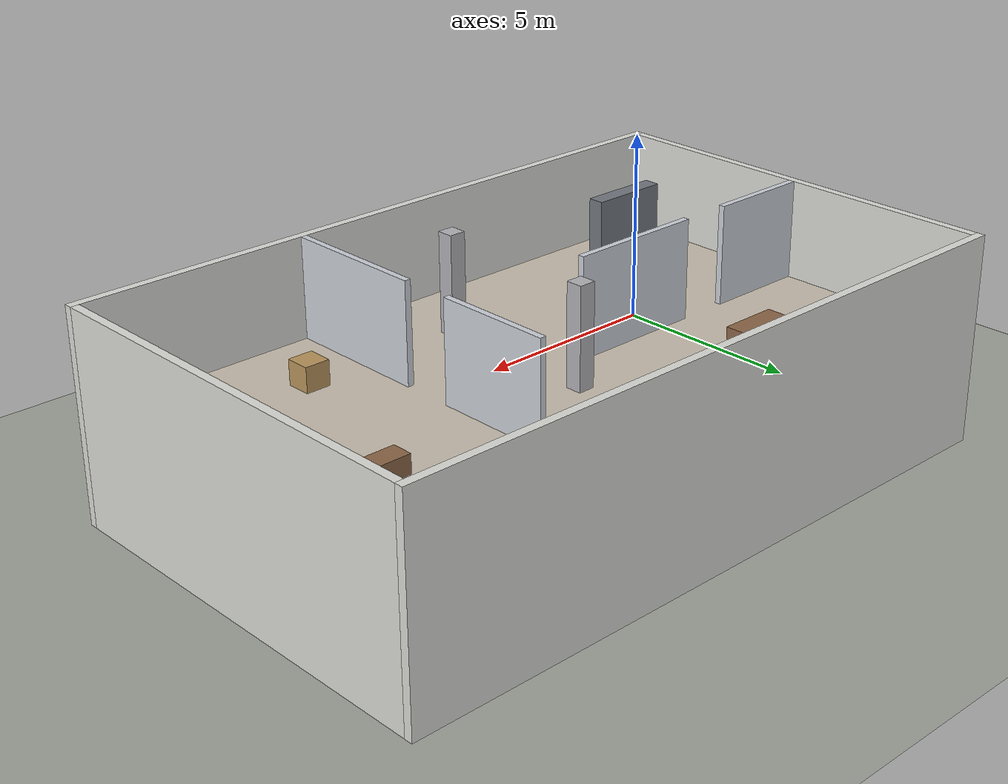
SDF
<?xml version="1.0"?>
<!-- 由 tools/gen_world.py 生成，请勿手改 -->
<sdf version="1.9">
  <world name="two_floor">
    <physics name="1ms" type="ignored">
      <max_step_size>0.002</max_step_size>
      <real_time_factor>1.0</real_time_factor>
    </physics>
    <plugin filename="gz-sim-physics-system" name="gz::sim::systems::Physics"/>
    <plugin filename="gz-sim-user-commands-system" name="gz::sim::systems::UserCommands"/>
    <plugin filename="gz-sim-scene-broadcaster-system" name="gz::sim::systems::SceneBroadcaster"/>
    <plugin filename="gz-sim-sensors-system" name="gz::sim::systems::Sensors">
      <render_engine>ogre2</render_engine>
    </plugin>
    <plugin filename="gz-sim-imu-system" name="gz::sim::systems::Imu"/>

    <gui fullscreen="0">
      <camera name="user_camera"><pose>-6 -8 10 0 0.6 0.9</pose></camera>
    </gui>

    <scene>
      <ambient>0.55 0.55 0.55 1</ambient>
      <background>0.78 0.84 0.90 1</background>
      <shadows>true</shadows>
    </scene>

    <light type="directional" name="sun">
      <cast_shadows>true</cast_shadows>
      <pose>0 0 20 0 0 0</pose>
      <diffuse>0.85 0.85 0.82 1</diffuse>
      <specular>0.2 0.2 0.2 1</specular>
      <direction>-0.4 0.3 -0.9</direction>
    </light>

    <model name="ground_plane">
      <static>true</static>
      <link name="link">
        <collision name="c"><geometry><plane><normal>0 0 1</normal><size>200 200</size></plane></geometry>
          <surface><friction><ode><mu>1.0</mu><mu2>1.0</mu2></ode></friction></surface></collision>
        <visual name="v"><geometry><plane><normal>0 0 1</normal><size>200 200</size></plane></geometry>
          <material><ambient>0.62 0.63 0.60 1</ambient><diffuse>0.62 0.63 0.60 1</diffuse></material></visual>
      </link>
    </model>

    <model name="building">
      <static>true</static>
      <link name="structure">
      <collision name="wall_s_c"><pose>8.0000 -0.1000 2.5000 0 0.00000 0</pose><geometry><box><size>16.4000 0.2000 5.0000</size></box></geometry><surface><friction><ode><mu>1.0</mu><mu2>1.0</mu2></ode></friction></surface></collision>
      <visual name="wall_s_v"><pose>8.0000 -0.1000 2.5000 0 0.00000 0</pose><geometry><box><size>16.4000 0.2000 5.0000</size></box></geometry><material><ambient>0.86 0.86 0.84 1</ambient><diffuse>0.86 0.86 0.84 1</diffuse><specular>0.1 0.1 0.1 1</specular></material></visual>
      <collision name="wall_n_c"><pose>8.0000 10.1000 2.5000 0 0.00000 0</pose><geometry><box><size>16.4000 0.2000 5.0000</size></box></geometry><surface><friction><ode><mu>1.0</mu><mu2>1.0</mu2></ode></friction></surface></collision>
      <visual name="wall_n_v"><pose>8.0000 10.1000 2.5000 0 0.00000 0</pose><geometry><box><size>16.4000 0.2000 5.0000</size></box></geometry><material><ambient>0.86 0.86 0.84 1</ambient><diffuse>0.86 0.86 0.84 1</diffuse><specular>0.1 0.1 0.1 1</specular></material></visual>
      <collision name="wall_w_c"><pose>-0.1000 5.0000 2.5000 0 0.00000 0</pose><geometry><box><size>0.2000 10.0000 5.0000</size></box></geometry><surface><friction><ode><mu>1.0</mu><mu2>1.0</mu2></ode></friction></surface></collision>
      <visual name="wall_w_v"><pose>-0.1000 5.0000 2.5000 0 0.00000 0</pose><geometry><box><size>0.2000 10.0000 5.0000</size></box></geometry><material><ambient>0.86 0.86 0.84 1</ambient><diffuse>0.86 0.86 0.84 1</diffuse><specular>0.1 0.1 0.1 1</specular></material></visual>
      <collision name="wall_e_c"><pose>16.1000 5.0000 2.5000 0 0.00000 0</pose><geometry><box><size>0.2000 10.0000 5.0000</size></box></geometry><surface><friction><ode><mu>1.0</mu><mu2>1.0</mu2></ode></friction></surface></collision>
      <visual name="wall_e_v"><pose>16.1000 5.0000 2.5000 0 0.00000 0</pose><geometry><box><size>0.2000 10.0000 5.0000</size></box></geometry><material><ambient>0.86 0.86 0.84 1</ambient><diffuse>0.86 0.86 0.84 1</diffuse><specular>0.1 0.1 0.1 1</specular></material></visual>
      <collision name="f1_w1a_c"><pose>5.0000 1.8000 1.2000 0 0.00000 0</pose><geometry><box><size>0.1500 3.6000 2.4000</size></box></geometry><surface><friction><ode><mu>1.0</mu><mu2>1.0</mu2></ode></friction></surface></collision>
      <visual name="f1_w1a_v"><pose>5.0000 1.8000 1.2000 0 0.00000 0</pose><geometry><box><size>0.1500 3.6000 2.4000</size></box></geometry><material><ambient>0.80 0.82 0.85 1</ambient><diffuse>0.80 0.82 0.85 1</diffuse><specular>0.1 0.1 0.1 1</specular></material></visual>
      <collision name="f1_w1b_c"><pose>5.0000 6.5000 1.2000 0 0.00000 0</pose><geometry><box><size>0.1500 3.4000 2.4000</size></box></geometry><surface><friction><ode><mu>1.0</mu><mu2>1.0</mu2></ode></friction></surface></collision>
      <visual name="f1_w1b_v"><pose>5.0000 6.5000 1.2000 0 0.00000 0</pose><geometry><box><size>0.1500 3.4000 2.4000</size></box></geometry><material><ambient>0.80 0.82 0.85 1</ambient><diffuse>0.80 0.82 0.85 1</diffuse><specular>0.1 0.1 0.1 1</specular></material></visual>
      <collision name="f1_w2a_c"><pose>11.2500 4.5000 1.2000 0 0.00000 0</pose><geometry><box><size>1.5000 0.1500 2.4000</size></box></geometry><surface><friction><ode><mu>1.0</mu><mu2>1.0</mu2></ode></friction></surface></collision>
      <visual name="f1_w2a_v"><pose>11.2500 4.5000 1.2000 0 0.00000 0</pose><geometry><box><size>1.5000 0.1500 2.4000</size></box></geometry><material><ambient>0.80 0.82 0.85 1</ambient><diffuse>0.80 0.82 0.85 1</diffuse><specular>0.1 0.1 0.1 1</specular></material></visual>
      <collision name="f1_w2b_c"><pose>14.6000 4.5000 1.2000 0 0.00000 0</pose><geometry><box><size>2.8000 0.1500 2.4000</size></box></geometry><surface><friction><ode><mu>1.0</mu><mu2>1.0</mu2></ode></friction></surface></collision>
      <visual name="f1_w2b_v"><pose>14.6000 4.5000 1.2000 0 0.00000 0</pose><geometry><box><size>2.8000 0.1500 2.4000</size></box></geometry><material><ambient>0.80 0.82 0.85 1</ambient><diffuse>0.80 0.82 0.85 1</diffuse><specular>0.1 0.1 0.1 1</specular></material></visual>
      <collision name="f1_pillar1_c"><pose>8.0000 2.0000 1.2000 0 0.00000 0</pose><geometry><box><size>0.4000 0.4000 2.4000</size></box></geometry><surface><friction><ode><mu>1.0</mu><mu2>1.0</mu2></ode></friction></surface></collision>
      <visual name="f1_pillar1_v"><pose>8.0000 2.0000 1.2000 0 0.00000 0</pose><geometry><box><size>0.4000 0.4000 2.4000</size></box></geometry><material><ambient>0.70 0.70 0.72 1</ambient><diffuse>0.70 0.70 0.72 1</diffuse><specular>0.1 0.1 0.1 1</specular></material></visual>
      <collision name="f1_pillar2_c"><pose>8.0000 6.0000 1.2000 0 0.00000 0</pose><geometry><box><size>0.4000 0.4000 2.4000</size></box></geometry><surface><friction><ode><mu>1.0</mu><mu2>1.0</mu2></ode></friction></surface></collision>
      <visual name="f1_pillar2_v"><pose>8.0000 6.0000 1.2000 0 0.00000 0</pose><geometry><box><size>0.4000 0.4000 2.4000</size></box></geometry><material><ambient>0.70 0.70 0.72 1</ambient><diffuse>0.70 0.70 0.72 1</diffuse><specular>0.1 0.1 0.1 1</specular></material></visual>
      <collision name="f1_crate_c"><pose>2.0000 2.0000 0.3500 0 0.00000 0</pose><geometry><box><size>0.8000 0.6000 0.7000</size></box></geometry><surface><friction><ode><mu>1.0</mu><mu2>1.0</mu2></ode></friction></surface></collision>
      <visual name="f1_crate_v"><pose>2.0000 2.0000 0.3500 0 0.00000 0</pose><geometry><box><size>0.8000 0.6000 0.7000</size></box></geometry><material><ambient>0.72 0.58 0.36 1</ambient><diffuse>0.72 0.58 0.36 1</diffuse><specular>0.1 0.1 0.1 1</specular></material></visual>
      <collision name="f1_sofa_c"><pose>2.5000 7.0000 0.4000 0 0.00000 0</pose><geometry><box><size>1.8000 0.8000 0.8000</size></box></geometry><surface><friction><ode><mu>1.0</mu><mu2>1.0</mu2></ode></friction></surface></collision>
      <visual name="f1_sofa_v"><pose>2.5000 7.0000 0.4000 0 0.00000 0</pose><geometry><box><size>1.8000 0.8000 0.8000</size></box></geometry><material><ambient>0.30 0.42 0.55 1</ambient><diffuse>0.30 0.42 0.55 1</diffuse><specular>0.1 0.1 0.1 1</specular></material></visual>
      <collision name="f1_table_c"><pose>13.0000 2.0000 0.3750 0 0.00000 0</pose><geometry><box><size>1.2000 0.8000 0.7500</size></box></geometry><surface><friction><ode><mu>1.0</mu><mu2>1.0</mu2></ode></friction></surface></collision>
      <visual name="f1_table_v"><pose>13.0000 2.0000 0.3750 0 0.00000 0</pose><geometry><box><size>1.2000 0.8000 0.7500</size></box></geometry><material><ambient>0.55 0.40 0.28 1</ambient><diffuse>0.55 0.40 0.28 1</diffuse><specular>0.1 0.1 0.1 1</specular></material></visual>
      <collision name="f1_cabinet_c"><pose>15.6500 6.5000 0.8000 0 0.00000 0</pose><geometry><box><size>0.5000 2.0000 1.6000</size></box></geometry><surface><friction><ode><mu>1.0</mu><mu2>1.0</mu2></ode></friction></surface></collision>
      <visual name="f1_cabinet_v"><pose>15.6500 6.5000 0.8000 0 0.00000 0</pose><geometry><box><size>0.5000 2.0000 1.6000</size></box></geometry><material><ambient>0.45 0.47 0.50 1</ambient><diffuse>0.45 0.47 0.50 1</diffuse><specular>0.1 0.1 0.1 1</specular></material></visual>
      <collision name="stair_side_wall_c"><pose>11.8000 8.3000 1.2000 0 0.00000 0</pose><geometry><box><size>8.4000 0.2000 2.4000</size></box></geometry><surface><friction><ode><mu>1.0</mu><mu2>1.0</mu2></ode></friction></surface></collision>
      <visual name="stair_side_wall_v"><pose>11.8000 8.3000 1.2000 0 0.00000 0</pose><geometry><box><size>8.4000 0.2000 2.4000</size></box></geometry><material><ambient>0.80 0.82 0.85 1</ambient><diffuse>0.80 0.82 0.85 1</diffuse><specular>0.1 0.1 0.1 1</specular></material></visual>
      <collision name="slab_a_c"><pose>8.0000 4.2000 2.5000 0 0.00000 0</pose><geometry><box><size>16.0000 8.4000 0.2000</size></box></geometry><surface><friction><ode><mu>1.0</mu><mu2>1.0</mu2></ode></friction></surface></collision>
      <visual name="slab_a_v"><pose>8.0000 4.2000 2.5000 0 0.00000 0</pose><geometry><box><size>16.0000 8.4000 0.2000</size></box></geometry><material><ambient>0.78 0.74 0.68 1</ambient><diffuse>0.78 0.74 0.68 1</diffuse><specular>0.1 0.1 0.1 1</specular></material></visual>
      <collision name="slab_b_c"><pose>3.8000 9.2000 2.5000 0 0.00000 0</pose><geometry><box><size>7.6000 1.6000 0.2000</size></box></geometry><surface><friction><ode><mu>1.0</mu><mu2>1.0</mu2></ode></friction></surface></collision>
      <visual name="slab_b_v"><pose>3.8000 9.2000 2.5000 0 0.00000 0</pose><geometry><box><size>7.6000 1.6000 0.2000</size></box></geometry><material><ambient>0.78 0.74 0.68 1</ambient><diffuse>0.78 0.74 0.68 1</diffuse><specular>0.1 0.1 0.1 1</specular></material></visual>
      <collision name="slab_c_c"><pose>14.6131 9.2000 2.5000 0 0.00000 0</pose><geometry><box><size>2.7738 1.6000 0.2000</size></box></geometry><surface><friction><ode><mu>1.0</mu><mu2>1.0</mu2></ode></friction></surface></collision>
      <visual name="slab_c_v"><pose>14.6131 9.2000 2.5000 0 0.00000 0</pose><geometry><box><size>2.7738 1.6000 0.2000</size></box></geometry><material><ambient>0.78 0.74 0.68 1</ambient><diffuse>0.78 0.74 0.68 1</diffuse><specular>0.1 0.1 0.1 1</specular></material></visual>
      <collision name="rail_s_c"><pose>10.3631 8.3000 3.1000 0 0.00000 0</pose><geometry><box><size>5.7262 0.1000 1.0000</size></box></geometry><surface><friction><ode><mu>1.0</mu><mu2>1.0</mu2></ode></friction></surface></collision>
      <visual name="rail_s_v"><pose>10.3631 8.3000 3.1000 0 0.00000 0</pose><geometry><box><size>5.7262 0.1000 1.0000</size></box></geometry><material><ambient>0.35 0.38 0.42 1</ambient><diffuse>0.35 0.38 0.42 1</diffuse><specular>0.1 0.1 0.1 1</specular></material></visual>
      <collision name="rail_w_c"><pose>7.5000 9.0750 3.1000 0 0.00000 0</pose><geometry><box><size>0.1000 1.6500 1.0000</size></box></geometry><surface><friction><ode><mu>1.0</mu><mu2>1.0</mu2></ode></friction></surface></collision>
      <visual name="rail_w_v"><pose>7.5000 9.0750 3.1000 0 0.00000 0</pose><geometry><box><size>0.1000 1.6500 1.0000</size></box></geometry><material><ambient>0.35 0.38 0.42 1</ambient><diffuse>0.35 0.38 0.42 1</diffuse><specular>0.1 0.1 0.1 1</specular></material></visual>
      <collision name="f2_w3a_c"><pose>1.2500 5.0000 3.8000 0 0.00000 0</pose><geometry><box><size>2.5000 0.1500 2.4000</size></box></geometry><surface><friction><ode><mu>1.0</mu><mu2>1.0</mu2></ode></friction></surface></collision>
      <visual name="f2_w3a_v"><pose>1.2500 5.0000 3.8000 0 0.00000 0</pose><geometry><box><size>2.5000 0.1500 2.4000</size></box></geometry><material><ambient>0.80 0.82 0.85 1</ambient><diffuse>0.80 0.82 0.85 1</diffuse><specular>0.1 0.1 0.1 1</specular></material></visual>
      <collision name="f2_w3b_c"><pose>5.3500 5.0000 3.8000 0 0.00000 0</pose><geometry><box><size>3.3000 0.1500 2.4000</size></box></geometry><surface><friction><ode><mu>1.0</mu><mu2>1.0</mu2></ode></friction></surface></collision>
      <visual name="f2_w3b_v"><pose>5.3500 5.0000 3.8000 0 0.00000 0</pose><geometry><box><size>3.3000 0.1500 2.4000</size></box></geometry><material><ambient>0.80 0.82 0.85 1</ambient><diffuse>0.80 0.82 0.85 1</diffuse><specular>0.1 0.1 0.1 1</specular></material></visual>
      <collision name="f2_w4a_c"><pose>10.5000 1.7500 3.8000 0 0.00000 0</pose><geometry><box><size>0.1500 3.5000 2.4000</size></box></geometry><surface><friction><ode><mu>1.0</mu><mu2>1.0</mu2></ode></friction></surface></collision>
      <visual name="f2_w4a_v"><pose>10.5000 1.7500 3.8000 0 0.00000 0</pose><geometry><box><size>0.1500 3.5000 2.4000</size></box></geometry><material><ambient>0.80 0.82 0.85 1</ambient><diffuse>0.80 0.82 0.85 1</diffuse><specular>0.1 0.1 0.1 1</specular></material></visual>
      <collision name="f2_w4b_c"><pose>10.5000 6.1000 3.8000 0 0.00000 0</pose><geometry><box><size>0.1500 2.8000 2.4000</size></box></geometry><surface><friction><ode><mu>1.0</mu><mu2>1.0</mu2></ode></friction></surface></collision>
      <visual name="f2_w4b_v"><pose>10.5000 6.1000 3.8000 0 0.00000 0</pose><geometry><box><size>0.1500 2.8000 2.4000</size></box></geometry><material><ambient>0.80 0.82 0.85 1</ambient><diffuse>0.80 0.82 0.85 1</diffuse><specular>0.1 0.1 0.1 1</specular></material></visual>
      <collision name="f2_pillar1_c"><pose>8.0000 2.0000 3.8000 0 0.00000 0</pose><geometry><box><size>0.4000 0.4000 2.4000</size></box></geometry><surface><friction><ode><mu>1.0</mu><mu2>1.0</mu2></ode></friction></surface></collision>
      <visual name="f2_pillar1_v"><pose>8.0000 2.0000 3.8000 0 0.00000 0</pose><geometry><box><size>0.4000 0.4000 2.4000</size></box></geometry><material><ambient>0.70 0.70 0.72 1</ambient><diffuse>0.70 0.70 0.72 1</diffuse><specular>0.1 0.1 0.1 1</specular></material></visual>
      <collision name="f2_pillar2_c"><pose>8.0000 6.0000 3.8000 0 0.00000 0</pose><geometry><box><size>0.4000 0.4000 2.4000</size></box></geometry><surface><friction><ode><mu>1.0</mu><mu2>1.0</mu2></ode></friction></surface></collision>
      <visual name="f2_pillar2_v"><pose>8.0000 6.0000 3.8000 0 0.00000 0</pose><geometry><box><size>0.4000 0.4000 2.4000</size></box></geometry><material><ambient>0.70 0.70 0.72 1</ambient><diffuse>0.70 0.70 0.72 1</diffuse><specular>0.1 0.1 0.1 1</specular></material></visual>
      <collision name="f2_shelf_c"><pose>1.5000 1.0000 3.3500 0 0.00000 0</pose><geometry><box><size>2.0000 0.4000 1.5000</size></box></geometry><surface><friction><ode><mu>1.0</mu><mu2>1.0</mu2></ode></friction></surface></collision>
      <visual name="f2_shelf_v"><pose>1.5000 1.0000 3.3500 0 0.00000 0</pose><geometry><box><size>2.0000 0.4000 1.5000</size></box></geometry><material><ambient>0.45 0.47 0.50 1</ambient><diffuse>0.45 0.47 0.50 1</diffuse><specular>0.1 0.1 0.1 1</specular></material></visual>
      <collision name="f2_desk_c"><pose>4.0000 7.5000 2.9750 0 0.00000 0</pose><geometry><box><size>1.4000 0.7000 0.7500</size></box></geometry><surface><friction><ode><mu>1.0</mu><mu2>1.0</mu2></ode></friction></surface></collision>
      <visual name="f2_desk_v"><pose>4.0000 7.5000 2.9750 0 0.00000 0</pose><geometry><box><size>1.4000 0.7000 0.7500</size></box></geometry><material><ambient>0.55 0.40 0.28 1</ambient><diffuse>0.55 0.40 0.28 1</diffuse><specular>0.1 0.1 0.1 1</specular></material></visual>
      <collision name="f2_boxes_c"><pose>12.0000 2.0000 2.9000 0 0.00000 0</pose><geometry><box><size>0.6000 0.6000 0.6000</size></box></geometry><surface><friction><ode><mu>1.0</mu><mu2>1.0</mu2></ode></friction></surface></collision>
      <visual name="f2_boxes_v"><pose>12.0000 2.0000 2.9000 0 0.00000 0</pose><geometry><box><size>0.6000 0.6000 0.6000</size></box></geometry><material><ambient>0.72 0.58 0.36 1</ambient><diffuse>0.72 0.58 0.36 1</diffuse><specular>0.1 0.1 0.1 1</specular></material></visual>
      <collision name="f2_bench_c"><pose>14.0000 6.2500 2.8250 0 0.00000 0</pose><geometry><box><size>2.0000 0.5000 0.4500</size></box></geometry><surface><friction><ode><mu>1.0</mu><mu2>1.0</mu2></ode></friction></surface></collision>
      <visual name="f2_bench_v"><pose>14.0000 6.2500 2.8250 0 0.00000 0</pose><geometry><box><size>2.0000 0.5000 0.4500</size></box></geometry><material><ambient>0.55 0.40 0.28 1</ambient><diffuse>0.55 0.40 0.28 1</diffuse><specular>0.1 0.1 0.1 1</specular></material></visual>
      <visual name="step_00_v"><pose>8.1867 9.1500 0.0867 0 0.00000 0</pose><geometry><box><size>0.3733 1.5000 0.1733</size></box></geometry><material><ambient>0.62 0.50 0.38 1</ambient><diffuse>0.62 0.50 0.38 1</diffuse><specular>0.1 0.1 0.1 1</specular></material></visual>
      <visual name="step_01_v"><pose>8.5600 9.1500 0.1733 0 0.00000 0</pose><geometry><box><size>0.3733 1.5000 0.3467</size></box></geometry><material><ambient>0.62 0.50 0.38 1</ambient><diffuse>0.62 0.50 0.38 1</diffuse><specular>0.1 0.1 0.1 1</specular></material></visual>
      <visual name="step_02_v"><pose>8.9333 9.1500 0.2600 0 0.00000 0</pose><geometry><box><size>0.3733 1.5000 0.5200</size></box></geometry><material><ambient>0.62 0.50 0.38 1</ambient><diffuse>0.62 0.50 0.38 1</diffuse><specular>0.1 0.1 0.1 1</specular></material></visual>
      <visual name="step_03_v"><pose>9.3065 9.1500 0.3467 0 0.00000 0</pose><geometry><box><size>0.3733 1.5000 0.6933</size></box></geometry><material><ambient>0.62 0.50 0.38 1</ambient><diffuse>0.62 0.50 0.38 1</diffuse><specular>0.1 0.1 0.1 1</specular></material></visual>
      <visual name="step_04_v"><pose>9.6799 9.1500 0.4333 0 0.00000 0</pose><geometry><box><size>0.3733 1.5000 0.8667</size></box></geometry><material><ambient>0.62 0.50 0.38 1</ambient><diffuse>0.62 0.50 0.38 1</diffuse><specular>0.1 0.1 0.1 1</specular></material></visual>
      <visual name="step_05_v"><pose>10.0532 9.1500 0.5200 0 0.00000 0</pose><geometry><box><size>0.3733 1.5000 1.0400</size></box></geometry><material><ambient>0.62 0.50 0.38 1</ambient><diffuse>0.62 0.50 0.38 1</diffuse><specular>0.1 0.1 0.1 1</specular></material></visual>
      <visual name="step_06_v"><pose>10.4265 9.1500 0.6067 0 0.00000 0</pose><geometry><box><size>0.3733 1.5000 1.2133</size></box></geometry><material><ambient>0.62 0.50 0.38 1</ambient><diffuse>0.62 0.50 0.38 1</diffuse><specular>0.1 0.1 0.1 1</specular></material></visual>
      <visual name="step_07_v"><pose>10.7997 9.1500 0.6933 0 0.00000 0</pose><geometry><box><size>0.3733 1.5000 1.3867</size></box></geometry><material><ambient>0.62 0.50 0.38 1</ambient><diffuse>0.62 0.50 0.38 1</diffuse><specular>0.1 0.1 0.1 1</specular></material></visual>
      <visual name="step_08_v"><pose>11.1730 9.1500 0.7800 0 0.00000 0</pose><geometry><box><size>0.3733 1.5000 1.5600</size></box></geometry><material><ambient>0.62 0.50 0.38 1</ambient><diffuse>0.62 0.50 0.38 1</diffuse><specular>0.1 0.1 0.1 1</specular></material></visual>
      <visual name="step_09_v"><pose>11.5464 9.1500 0.8667 0 0.00000 0</pose><geometry><box><size>0.3733 1.5000 1.7333</size></box></geometry><material><ambient>0.62 0.50 0.38 1</ambient><diffuse>0.62 0.50 0.38 1</diffuse><specular>0.1 0.1 0.1 1</specular></material></visual>
      <visual name="step_10_v"><pose>11.9197 9.1500 0.9533 0 0.00000 0</pose><geometry><box><size>0.3733 1.5000 1.9067</size></box></geometry><material><ambient>0.62 0.50 0.38 1</ambient><diffuse>0.62 0.50 0.38 1</diffuse><specular>0.1 0.1 0.1 1</specular></material></visual>
      <visual name="step_11_v"><pose>12.2930 9.1500 1.0400 0 0.00000 0</pose><geometry><box><size>0.3733 1.5000 2.0800</size></box></geometry><material><ambient>0.62 0.50 0.38 1</ambient><diffuse>0.62 0.50 0.38 1</diffuse><specular>0.1 0.1 0.1 1</specular></material></visual>
      <visual name="step_12_v"><pose>12.6663 9.1500 1.1267 0 0.00000 0</pose><geometry><box><size>0.3733 1.5000 2.2533</size></box></geometry><material><ambient>0.62 0.50 0.38 1</ambient><diffuse>0.62 0.50 0.38 1</diffuse><specular>0.1 0.1 0.1 1</specular></material></visual>
      <visual name="step_13_v"><pose>13.0396 9.1500 1.2133 0 0.00000 0</pose><geometry><box><size>0.3733 1.5000 2.4267</size></box></geometry><material><ambient>0.62 0.50 0.38 1</ambient><diffuse>0.62 0.50 0.38 1</diffuse><specular>0.1 0.1 0.1 1</specular></material></visual>
      <visual name="step_14_v"><pose>13.4129 9.1500 1.2990 0 0.00000 0</pose><geometry><box><size>0.3733 1.5000 2.5980</size></box></geometry><material><ambient>0.62 0.50 0.38 1</ambient><diffuse>0.62 0.50 0.38 1</diffuse><specular>0.1 0.1 0.1 1</specular></material></visual>
      <collision name="stair_ramp_c"><pose>10.4005 9.1500 1.1777 0 -0.43470 0</pose><geometry><box><size>6.3237 1.5000 0.2000</size></box></geometry><surface><friction><ode><mu>1.0</mu><mu2>1.0</mu2></ode></friction></surface></collision>
      </link>
    </model>
  </world>
</sdf>
